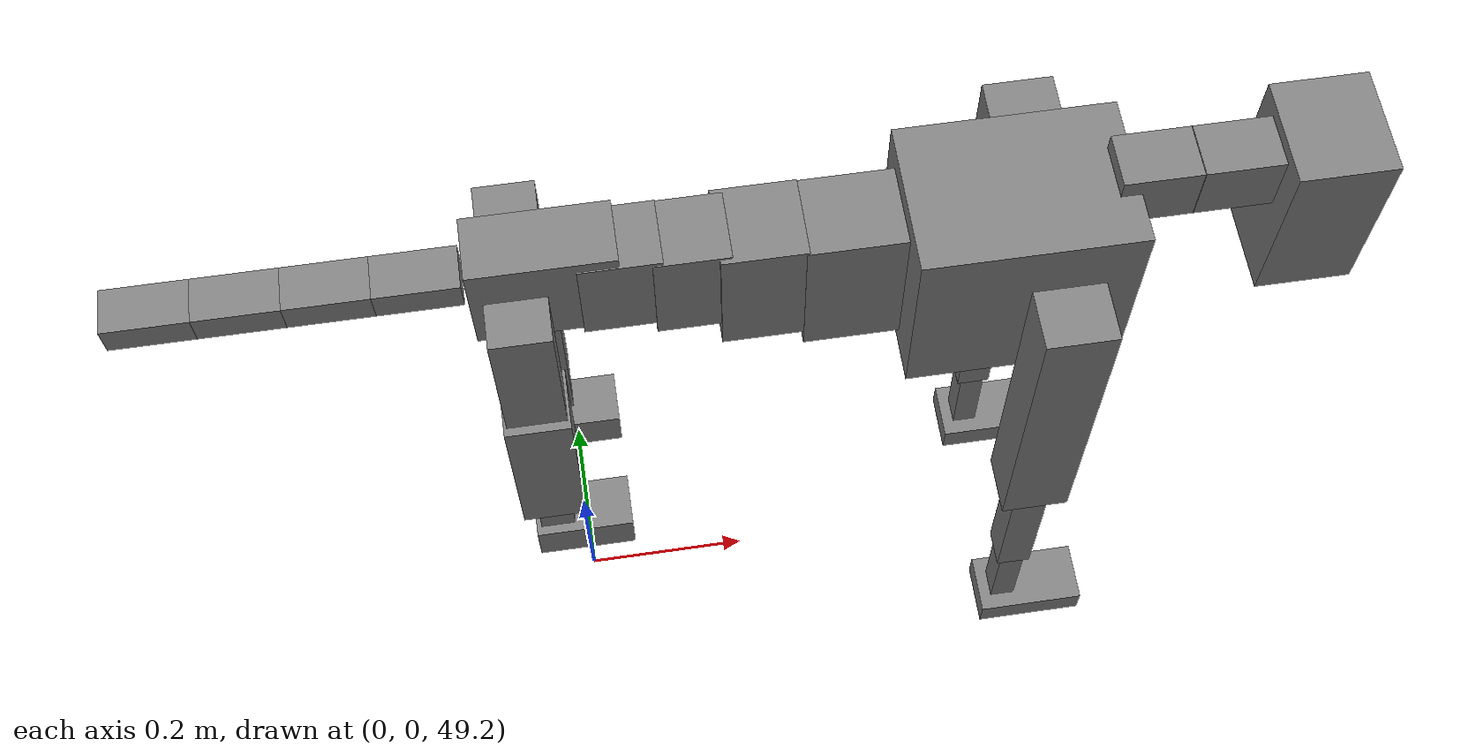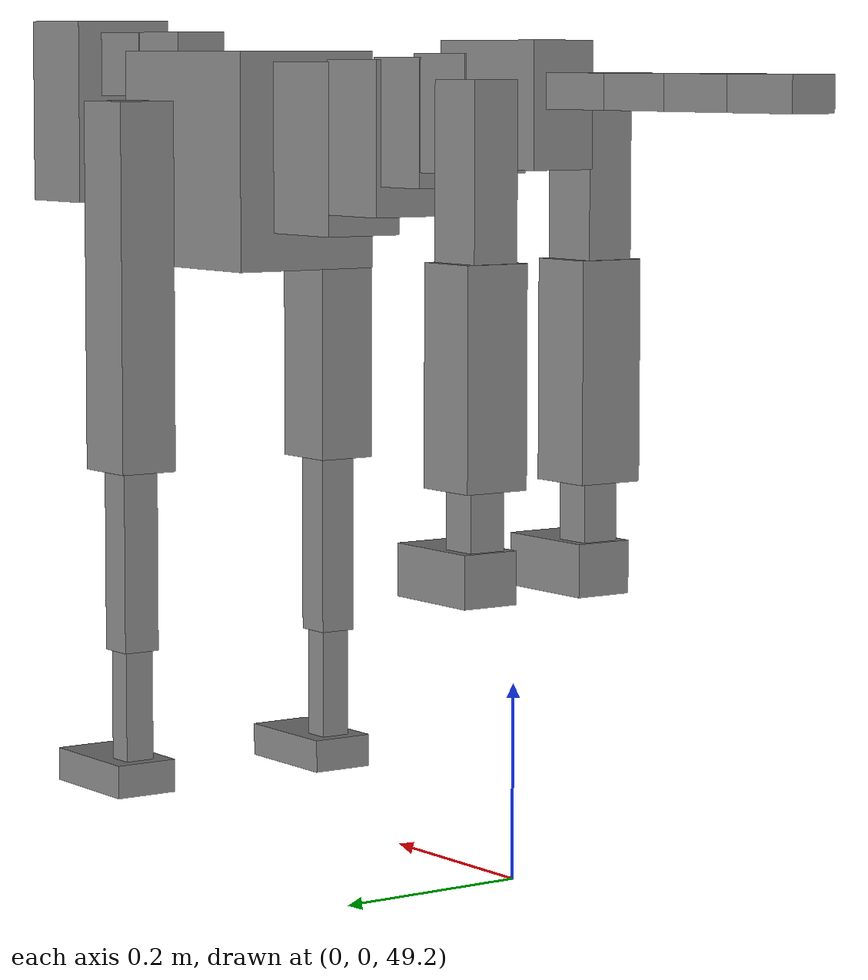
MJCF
<mujoco model="dog">

    <default>
        <joint armature="0.02" stiffness="1" damping="0.2" limited="true"/>
        <geom condim="3" friction="1 0.05 0.05" margin="0.01"/>
        <motor ctrllimited="true" ctrlrange="-1.0 1.0" forcelimited="true" gear="50"/>
    </default>

    <compiler inertiafromgeom="true" angle="radian"/>

    <option timestep="0.016" iterations="50" tolerance="1e-10" solver="Newton" jacobian="dense" cone="pyramidal"/>

    <size nconmax="20000" njmax="60000" nstack="5000000"/>
    <visual>
        <map force="0.1" zfar="30"/>
        <rgba haze="0.15 0.25 0.35 1"/>
        <quality shadowsize="2048"/>
        <global offwidth="800" offheight="800"/>
    </visual>

    <asset>
        <texture type="skybox" builtin="gradient" rgb1="0.3 0.5 0.7" rgb2="0 0 0" width="512" height="512"/>
        <texture name="texplane" type="2d" builtin="checker" rgb1=".2 .3 .4" rgb2=".1 0.15 0.2" width="512" height="512"
                 mark="cross" markrgb=".8 .8 .8"/>
        <texture name="texgeom" type="cube" builtin="flat" mark="cross" width="127" height="1278" rgb1="0.8 0.6 0.4"
                 rgb2="0.8 0.6 0.4" markrgb="1 1 1" random="0.01"/>

        <material name="matplane" reflectance="0.3" texture="texplane" texrepeat="1 1" texuniform="true"/>
        <material name="matgeom" texture="texgeom" texuniform="true" rgba="0.8 0.6 .4 1"/>
    </asset>

    <worldbody>
        <geom name="floor" pos="0 0 0" size="0 0 .25" type="plane" material="matplane" condim="3"/>

        <light directional="false" diffuse=".2 .2 .2" specular="0 0 0" pos="0 0 5" dir="0 0 -1" castshadow="false"/>
        <light mode="targetbodycom" target="torso" directional="false" diffuse=".8 .8 .8" specular="0.3 0.3 0.3"
               pos="0 0 4.0" dir="0 0 -1"/>

        <body name="root" pos="0 0 50">
            <freejoint name="root_1"/>
            <geom type="box" pos="0 0 -0.02" size="0.0774  0.0358  0.063" density="2030"/>

            <body name="spine1" pos="0.054 0 0">
                <joint name="spine1_y" axis="0 1 0" range="0 0.7" limited="true"/>
                <geom type="box" pos="0.02375 0 -0.03" size="0.04375  0.0375  0.05985" density="2030"/>

                <body name="spine2" pos="0.0612 0 0">
                    <joint name="spine2_y" axis="0 1 0" range="-0.15 0.15" limited="true"/>
                    <geom type="box" pos="0.03555  0  -0.04" size="0.04055  0.039  0.06615" density="2030"/>

                    <body name="spine3" pos="0.0730 0 0">
                        <joint name="spine3_y" axis="0 1 0" range="-0.15 0.15" limited="true"/>
                        <geom type="box" pos="0.03555  0  -0.057" size="0.04555  0.0445  0.081" density="2030"/>

                        <body name="spine4" pos="0.0780 0 0">
                            <joint name="spine4_y" axis="0 1 0" range="-0.15 0.15" limited="true"/>
                            <geom type="box" pos="0.05265  0  -0.07" size="0.05265  0.045  0.09135" density="2030"/>

                            <body name="torso" pos="0.1082 0 0">
                                <joint name="torso_y" axis="0 1 0" range="-0.15 0.15" limited="true"/>
                                <geom type="box" pos="0.11925  0  -0.085" size="0.11925  0.085  0.11745"
                                      density="2030"/>

                                <body name="neck1" pos="0.2160  0   0.0180">
                                    <joint name="neck1_y" axis="0 1 0" range="-1.2  -1" limited="true"/>
                                    <geom type="box" pos="0.0423  0  0" size="0.0423  0.03  0.036" density="2325"/>

                                    <body name="neck2" pos="0.0853  0  0">
                                        <joint name="neck2_y" axis="0 1 0" range="0.1  0" limited="true"/>
                                        <geom type="box" pos="0.0423  0  0" size="0.0423  0.03  0.036" density="2325"/>

                                        <body name="head" pos="0.0853  0  0">
                                            <joint name="head_y" axis="0 1 0" range="-0.3  -0.2" limited="true"/>
                                            <geom type="box" pos="0.0531  0  -0.055" size="0.0531  0.06  0.1044"
                                                  density="4030"/>

                                        </body>
                                    </body>
                                </body>

                                <body name="front_shoulder" pos="0.156  0   -0.0480">
                                    <joint name="front_shoulder_y" axis="0 1 0" range="-1 1.5" limited="true"/>
                                    <geom type="box" pos="0 0.13 -0.1757" size="0.0390  0.0333  0.2023" density="1158"/>
                                    <geom type="box" pos="0 -0.13 -0.1757" size="0.0390  0.0333  0.2023"
                                          density="1158"/>

                                    <body name="front_elbow" pos="0  0  -0.3513">
                                        <joint name="front_elbow_y" axis="0 1 0" range="-2 0" limited="true"/>
                                        <geom type="box" pos="0 0.13 -0.1131" size="0.0207  0.0211  0.1131"
                                              density="1081"/>
                                        <geom type="box" pos="0 -0.13 -0.1131" size="0.0207  0.0211  0.1131"
                                              density="1081"/>

                                        <body name="front_wrist" pos="0  0  -0.2262">
                                            <joint name="front_wrist_y" axis="0 1 0" range="-0.2 0" limited="true"/>
                                            <geom type="box" pos="0 0.13 -0.0684" size="0.0151  0.0168  0.0816"
                                                  density="1664"/>
                                            <geom type="box" pos="0 -0.13 -0.0684" size="0.0151  0.0168  0.0816"
                                                  density="1664"/>

                                            <body name="front_finger_end" pos="0  0  -0.1369">
                                                <joint name="front_finger_y" axis="0 1 0" range="-0.4 1"
                                                       limited="true"/>
                                                <geom type="box" pos="0.0359  0.13  -0.0032"
                                                      size="0.0658  0.0359  0.0182" density="1515"/>
                                                <geom type="box" pos="0.0359  -0.13  -0.0032"
                                                      size="0.0658  0.0359  0.0182" density="1515"/>

                                            </body>

                                        </body>
                                    </body>
                                </body>

                            </body>
                        </body>
                    </body>
                </body>
            </body>

            <body name="back_hip" pos="-0.03 0 -0.018">
                <joint name="back_hip_y" axis="0 1 0" range="-1.5 0.3" limited="true"/>
                <geom type="box" pos="0 0.07 -0.0854" size="0.0328  0.0257  0.1082" density="1154"/>
                <geom type="box" pos="0 -0.07 -0.0854" size="0.0328  0.0257  0.1082" density="1154"/>

                <body name="back_knee" pos="0  0  -0.1708">
                    <joint name="back_knee_y" axis="0 1 0" range="0 2.8" limited="true"/>
                    <geom type="box" pos="0 0.07 -0.0955" size="0.0362  0.0357  0.1111" density="1227"/>
                    <geom type="box" pos="0 -0.07 -0.0955" size="0.0362  0.0357  0.1111" density="1227"/>

                    <body name="back_ankle" pos="0  0  -0.1911">
                        <joint name="back_ankle_y" axis="0 1 0" range="-2.2 0" limited="true"/>
                        <geom type="box" pos="0 0.07 -0.0454" size="0.0201  0.0201  0.0567" density="1284"/>
                        <geom type="box" pos="0 -0.07 -0.0454" size="0.0201  0.0201  0.0567" density="1284"/>

                        <body name="back_toe_end" pos="0  0  -0.0908">
                            <joint name="back_toe_y" axis="0 1 0" range="-0.4 1" limited="true"/>
                            <geom type="box" pos="0.0311  0.07  -0.0118" size="0.0571  0.0311  0.0268" density="1515"/>
                            <geom type="box" pos="0.0311  -0.07  -0.0118" size="0.0571  0.0311  0.0268" density="1515"/>

                        </body>
                    </body>
                </body>
            </body>

            <body name="tail1" pos="-0.074 0 -0.006">
                <joint name="tail1_y" axis="0 1 0" range="-0.2 0.2" limited="true"/>
                <geom type="box" pos="-0.0536  0  0" size="0.045  0.025  0.0175" density="1587"/>

                <body name="tail2" pos="-0.09 0 0">
                    <joint name="tail2_y" axis="0 1 0" range="-0.2 0.2" limited="true"/>
                    <geom type="box" pos="-0.0536  0  0" size="0.045  0.025  0.0175" density="1587"/>

                    <body name="tail3" pos="-0.09 0 0">
                        <joint name="tail3_y" axis="0 1 0" range="-0.2 0.2" limited="true"/>
                        <geom type="box" pos="-0.0536  0  0" size="0.045  0.025  0.0175" density="1587"/>

                        <body name="tail4" pos="-0.09 0 0">
                            <joint name="tail4_y" axis="0 1 0" range="-0.2 0.2" limited="true"/>
                            <geom type="box" pos="-0.0536  0  0" size="0.045  0.025  0.0175" density="1587"/>

                        </body>
                    </body>
                </body>
            </body>
        </body>
    </worldbody>

    <actuator>
        <motor joint="spine1_y" forcerange="-150 150     "/>
        <motor joint="spine2_y" forcerange="-150 150     "/>
        <motor joint="spine3_y" forcerange="-150 150     "/>
        <motor joint="spine4_y" forcerange="-150 150     "/>
        <motor joint="torso_y" forcerange="-150 150     "/>
        <motor joint="neck1_y" forcerange="-100 100       "/>
        <motor joint="neck2_y" forcerange="-100 100       "/>
        <motor joint="head_y" forcerange="-150 150       "/>
        <motor joint="front_shoulder_y" forcerange="-185.47 136.59"/>
        <motor joint="front_elbow_y" forcerange="-138.52 115.10"/>
        <motor joint="front_wrist_y" forcerange="-58.50 75.62"/>
        <motor joint="front_finger_y" forcerange="-60.20 91.25"/>
        <motor joint="back_hip_y" forcerange="-279.02 263.66"/>
        <motor joint="back_knee_y" forcerange="-348.93 370.16"/>
        <motor joint="back_angle_y" forcerange="-64.19 157.56"/>
        <motor joint="back_toe_y" forcerange="-109.40 59.67"/>
        <motor joint="tail1_y" forcerange="-50 50     "/>
        <motor joint="tail2_y" forcerange="-50 50     "/>
        <motor joint="tail3_y" forcerange="-50 50     "/>
        <motor joint="tail4_y" forcerange="-50 50     "/>
    </actuator>
</mujoco>
